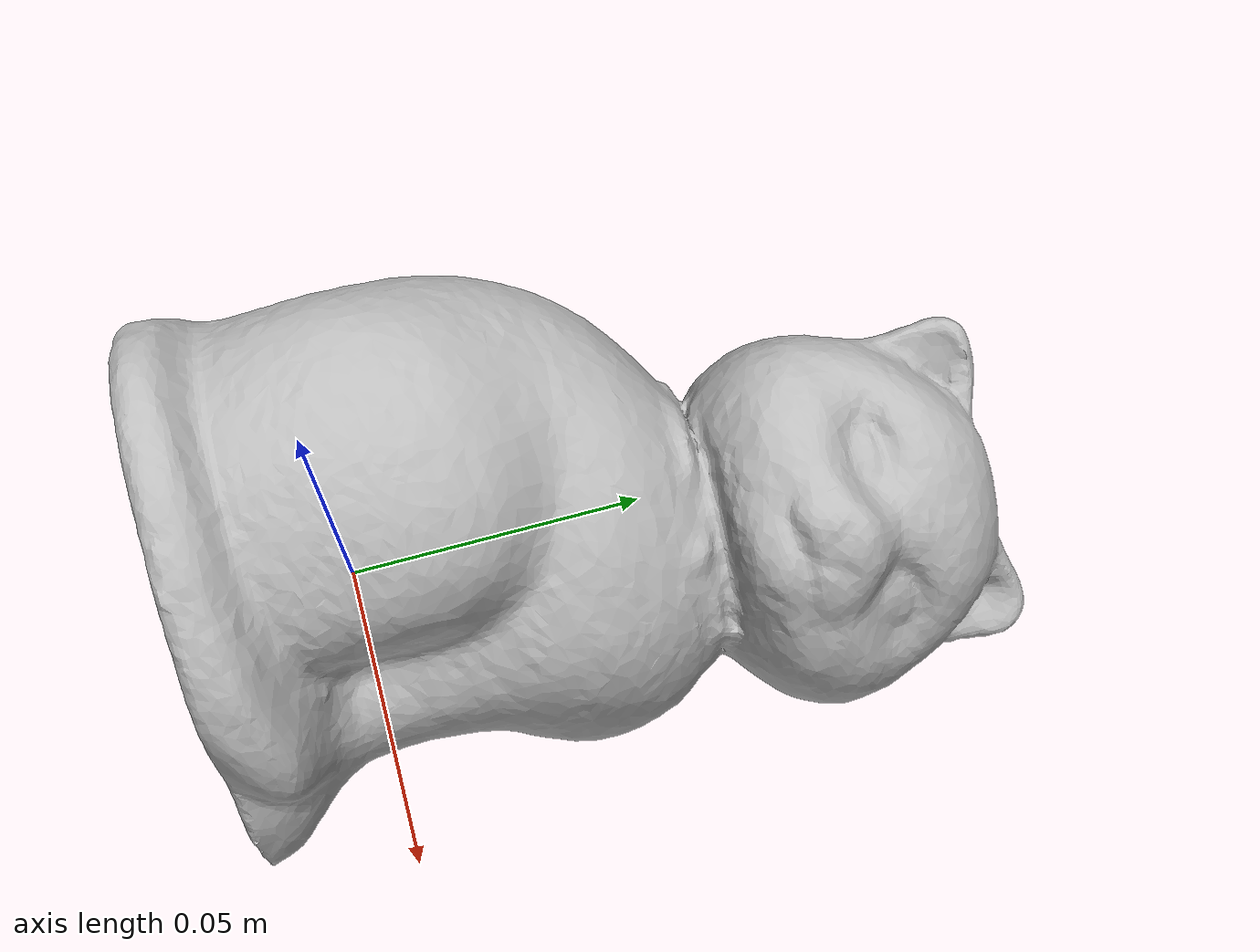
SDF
<?xml version='1.0'?>
<sdf version="1.4">
  <model name="CatSitting">
    <static>false</static>
    <link name="link">
      <inertial>
        <pose>-0.0009728945315921285 0.03181450013029984 -0.004391437521029802 -1.851910478372341 -1.1692584882270327 0.1069612892093312</pose>
        <mass>0.06343312391194168</mass>
        <inertia>
          <ixx>0.00011736955307926345</ixx>
          <ixy>-9.669997072902595e-21</ixy>
          <ixz>-6.962922810420107e-21</ixz>
          <iyy>0.00011094214811899272</iyy>
          <iyz>-3.4278294095411354e-22</iyz>
          <izz>4.9760479851454996e-05</izz>
        </inertia>
      </inertial>
      <collision name="collision">
        <geometry>
          <mesh>
            <!-- Use a downsampled mesh for collisions -->
            <uri>model:///CatSitting/CatSitting_250_collision.obj</uri>
	        </mesh>
        </geometry>
        <surface>
      </surface>
      </collision>
      <visual name="visual">
        <geometry>
          <mesh>
            <uri>model:///CatSitting/CatSitting_25k_tex.obj</uri>
	        </mesh>
        </geometry>
        <material>
          <script>
            <uri>model:///CatSitting/CatSitting.material</uri>
            <name>CatSitting</name>
          </script>
        </material>
      </visual>
    </link>
  </model>
</sdf>
